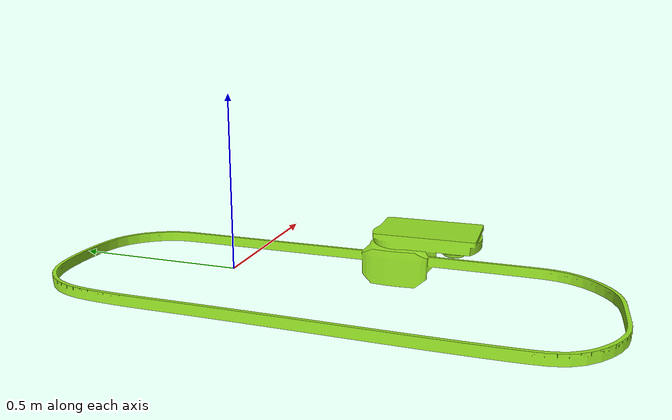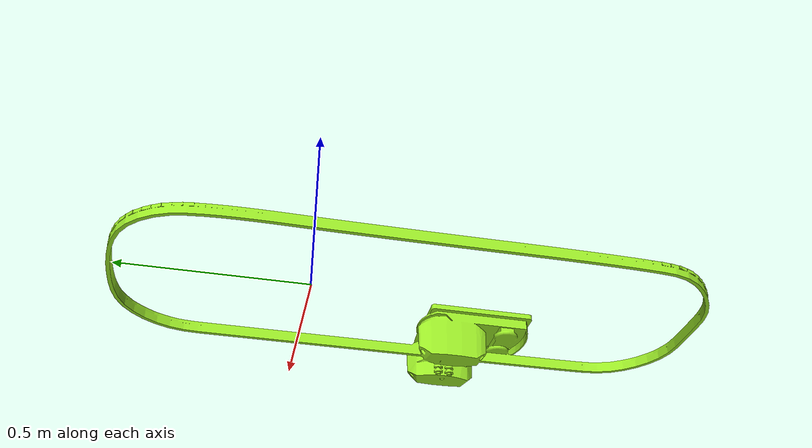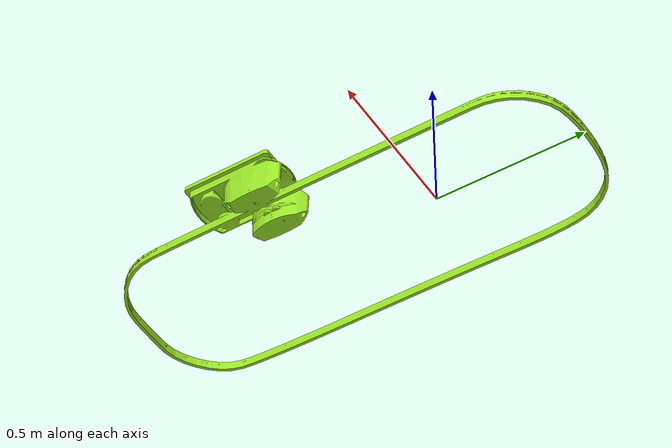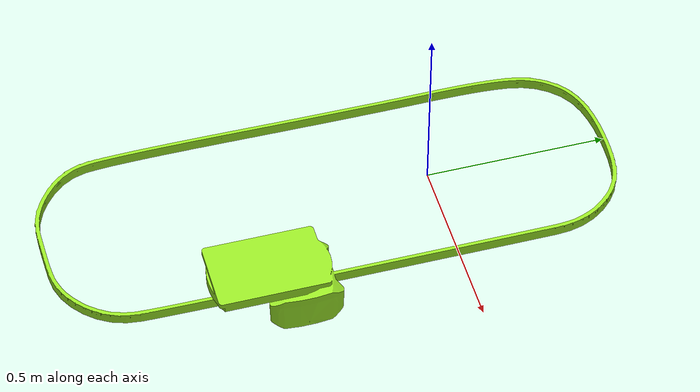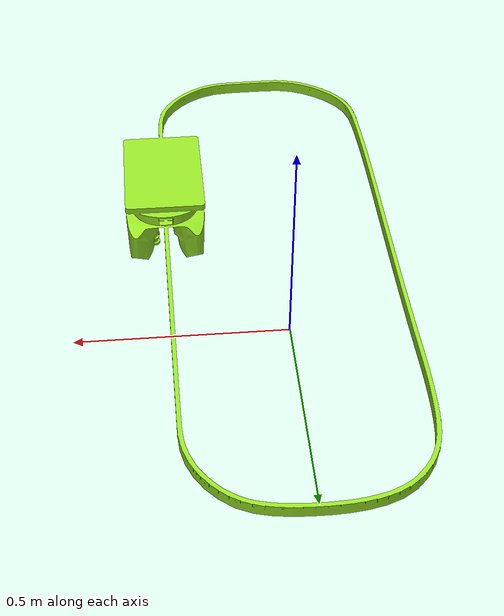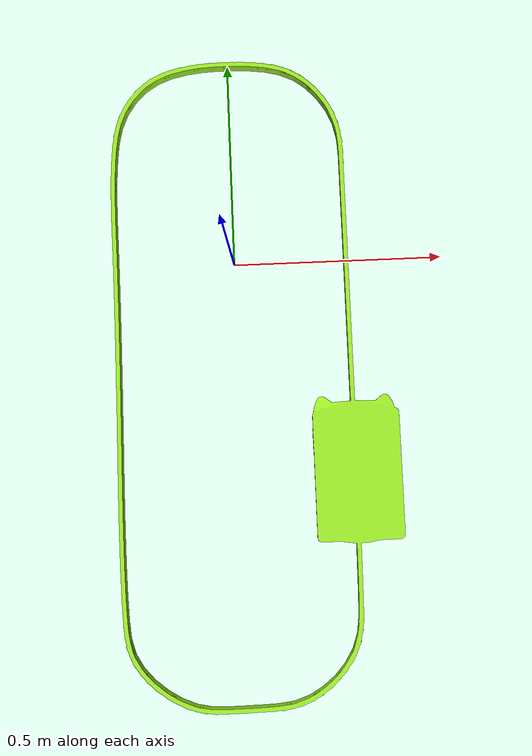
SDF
<?xml version="1.0"?>
<sdf version="1.9">
  <model name="shuttle_2_left">
    <static>true</static>
    <link name="shuttle_2_left_link">
      <visual name="shuttle_2_left_visual">
        <geometry>
          <mesh>
            <uri>model://shuttle_2_left/meshes/shuttle_2_left.stl</uri>
          </mesh>
        </geometry>
        <material>
          <ambient>0.60 0.90 0.15 1</ambient>
          <diffuse>0.60 0.90 0.15 1</diffuse>
          <specular>0.20 0.20 0.20 1</specular>
          <emissive>0 0 0 1</emissive>
        </material>
      </visual>
      <collision name="shuttle_2_left_collision">
        <geometry>
          <mesh>
            <uri>model://shuttle_2_left/meshes/shuttle_2_left.stl</uri>
          </mesh>
        </geometry>
      </collision>
    </link>
  </model>
</sdf>
